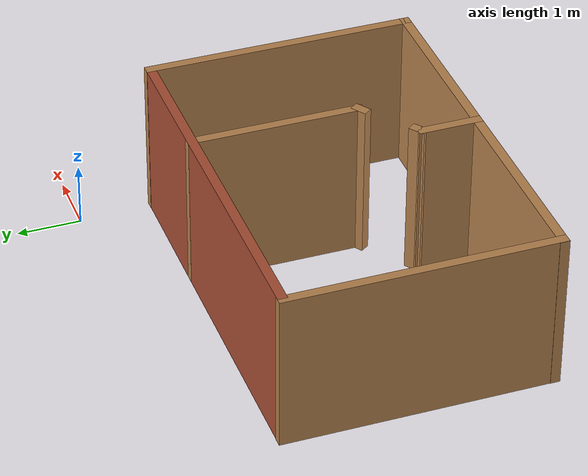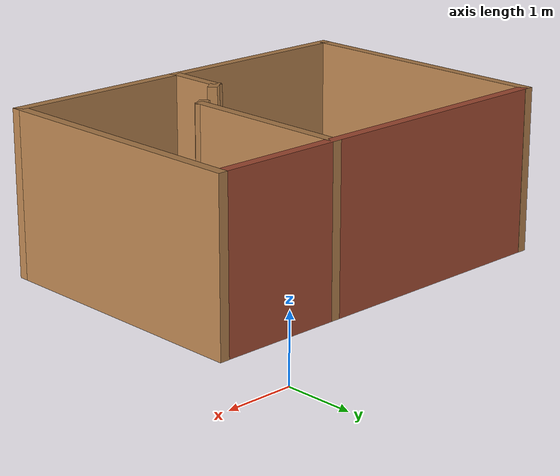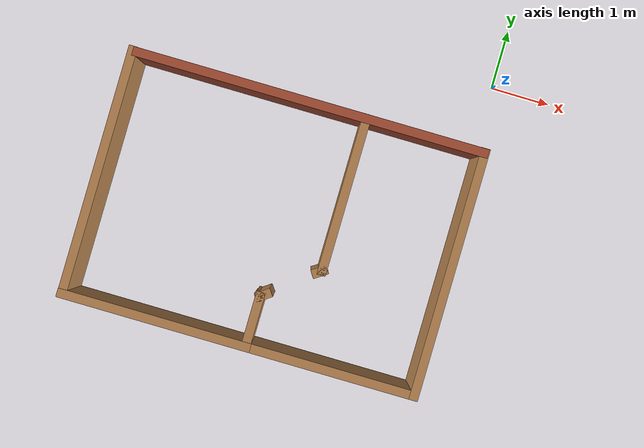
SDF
<?xml version='1.0'?>
<sdf version='1.6'>
  <model name='MyRoom'>
    <pose frame=''>-2.92645 -3.24196 0 0 -0 0</pose>
    <link name='Wall_13'>
      <collision name='Wall_13_Collision'>
        <geometry>
          <box>
            <size>3.26 0.15 2.5</size>
          </box>
        </geometry>
        <pose frame=''>0 0 1.25 0 -0 0</pose>
      </collision>
      <visual name='Wall_13_Visual'>
        <pose frame=''>0 0 1.25 0 -0 0</pose>
        <geometry>
          <box>
            <size>3.26 0.15 2.5</size>
          </box>
        </geometry>
        <material>
          <script>
            <uri>file://media/materials/scripts/gazebo.material</uri>
            <name>Gazebo/Wood</name>
          </script>
          <ambient>1 1 1 1</ambient>
        </material>
        <meta>
          <layer>0</layer>
        </meta>
      </visual>
      <pose frame=''>-1.42063 -2.05 0 0 -0 0</pose>
    </link>
    <link name='Wall_14'>
      <collision name='Wall_14_Collision'>
        <geometry>
          <box>
            <size>1 0.15 2.5</size>
          </box>
        </geometry>
        <pose frame=''>0 0 1.25 0 -0 0</pose>
      </collision>
      <visual name='Wall_14_Visual'>
        <pose frame=''>0 0 1.25 0 -0 0</pose>
        <geometry>
          <box>
            <size>1 0.15 2.5</size>
          </box>
        </geometry>
        <material>
          <script>
            <uri>file://media/materials/scripts/gazebo.material</uri>
            <name>Gazebo/Wood</name>
          </script>
          <ambient>1 1 1 1</ambient>
        </material>
        <meta>
          <layer>0</layer>
        </meta>
      </visual>
      <pose frame=''>0.125627 -1.625 0 0 -0 1.5708</pose>
    </link>
    <link name='Wall_15'>
      <collision name='Wall_15_Collision'>
        <geometry>
          <box>
            <size>0.269994 0.15 2.5</size>
          </box>
        </geometry>
        <pose frame=''>0 0 1.25 0 -0 0</pose>
      </collision>
      <visual name='Wall_15_Visual'>
        <pose frame=''>0 0 1.25 0 -0 0</pose>
        <geometry>
          <box>
            <size>0.269994 0.15 2.5</size>
          </box>
        </geometry>
        <material>
          <script>
            <uri>file://media/materials/scripts/gazebo.material</uri>
            <name>Gazebo/Wood</name>
          </script>
          <ambient>1 1 1 1</ambient>
        </material>
        <meta>
          <layer>0</layer>
        </meta>
      </visual>
      <pose frame=''>0.1741 -1.16464 0 0 -0 0.630176</pose>
    </link>
    <link name='Wall_18'>
      <collision name='Wall_18_Collision'>
        <geometry>
          <box>
            <size>0.261065 0.15 2.5</size>
          </box>
        </geometry>
        <pose frame=''>0 0 1.25 0 -0 0</pose>
      </collision>
      <visual name='Wall_18_Visual'>
        <pose frame=''>0 0 1.25 0 -0 0</pose>
        <geometry>
          <box>
            <size>0.261065 0.15 2.5</size>
          </box>
        </geometry>
        <material>
          <script>
            <uri>file://media/materials/scripts/gazebo.material</uri>
            <name>Gazebo/Wood</name>
          </script>
          <ambient>1 1 1 1</ambient>
        </material>
        <meta>
          <layer>0</layer>
        </meta>
      </visual>
      <pose frame=''>0.943591 -0.549857 0 0 -0 0.586838</pose>
    </link>
    <link name='Wall_20'>
      <collision name='Wall_20_Collision'>
        <geometry>
          <box>
            <size>6 0.15 2.5</size>
          </box>
        </geometry>
        <pose frame=''>0 0 1.25 0 -0 0</pose>
      </collision>
      <visual name='Wall_20_Visual'>
        <pose frame=''>0 0 1.25 0 -0 0</pose>
        <geometry>
          <box>
            <size>6 0.15 2.5</size>
          </box>
        </geometry>
        <material>
          <script>
            <uri>file://media/materials/scripts/gazebo.material</uri>
            <name>Gazebo/Bricks</name>
          </script>
          <ambient>1 1 1 1</ambient>
        </material>
        <meta>
          <layer>0</layer>
        </meta>
      </visual>
      <pose frame=''>0.035821 2.04626 0 0 -0 3.14159</pose>
    </link>
    <link name='Wall_27'>
      <collision name='Wall_27_Collision'>
        <geometry>
          <box>
            <size>4.25 0.15 2.5</size>
          </box>
        </geometry>
        <pose frame=''>0 0 1.25 0 -0 0</pose>
      </collision>
      <visual name='Wall_27_Visual'>
        <pose frame=''>0 0 1.25 0 -0 0</pose>
        <geometry>
          <box>
            <size>4.25 0.15 2.5</size>
          </box>
        </geometry>
        <material>
          <script>
            <uri>file://media/materials/scripts/gazebo.material</uri>
            <name>Gazebo/Wood</name>
          </script>
          <ambient>1 1 1 1</ambient>
        </material>
        <meta>
          <layer>0</layer>
        </meta>
      </visual>
      <pose frame=''>-2.97063 0 0 0 -0 1.5708</pose>
    </link>
    <link name='Wall_30'>
      <collision name='Wall_30_Collision'>
        <geometry>
          <box>
            <size>4.25 0.15 2.5</size>
          </box>
        </geometry>
        <pose frame=''>0 0 1.25 0 -0 0</pose>
      </collision>
      <visual name='Wall_30_Visual'>
        <pose frame=''>0 0 1.25 0 -0 0</pose>
        <geometry>
          <box>
            <size>4.25 0.15 2.5</size>
          </box>
        </geometry>
        <material>
          <script>
            <uri>file://media/materials/scripts/gazebo.material</uri>
            <name>Gazebo/Wood</name>
          </script>
          <ambient>1 1 1 1</ambient>
        </material>
        <meta>
          <layer>0</layer>
        </meta>
      </visual>
      <pose frame=''>2.97563 0 0 0 0 -1.5708</pose>
    </link>
    <link name='Wall_31'>
      <collision name='Wall_31_Collision'>
        <geometry>
          <box>
            <size>3 0.15 2.5</size>
          </box>
        </geometry>
        <pose frame=''>0 0 1.25 0 -0 0</pose>
      </collision>
      <visual name='Wall_31_Visual'>
        <pose frame=''>0 0 1.25 0 -0 0</pose>
        <geometry>
          <box>
            <size>3 0.15 2.5</size>
          </box>
        </geometry>
        <material>
          <script>
            <uri>file://media/materials/scripts/gazebo.material</uri>
            <name>Gazebo/Wood</name>
          </script>
          <ambient>1 1 1 1</ambient>
        </material>
        <meta>
          <layer>0</layer>
        </meta>
      </visual>
      <pose frame=''>1.55063 -2.05 0 0 -0 3.14159</pose>
    </link>
    <link name='Wall_36'>
      <collision name='Wall_36_Collision'>
        <geometry>
          <box>
            <size>2.71571 0.15 2.5</size>
          </box>
        </geometry>
        <pose frame=''>0 0 1.25 0 -0 0</pose>
      </collision>
      <visual name='Wall_36_Visual'>
        <pose frame=''>0 0 1.25 0 -0 0</pose>
        <geometry>
          <box>
            <size>2.71571 0.15 2.5</size>
          </box>
        </geometry>
        <material>
          <script>
            <uri>file://media/materials/scripts/gazebo.material</uri>
            <name>Gazebo/Wood</name>
          </script>
          <ambient>1 1 1 1</ambient>
        </material>
        <meta>
          <layer>0</layer>
        </meta>
      </visual>
      <pose frame=''>0.979183 0.763747 0 0 0 -1.57151</pose>
    </link>
    <static>1</static>
  </model>
</sdf>
